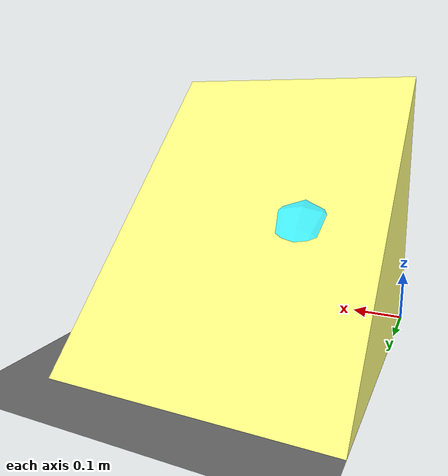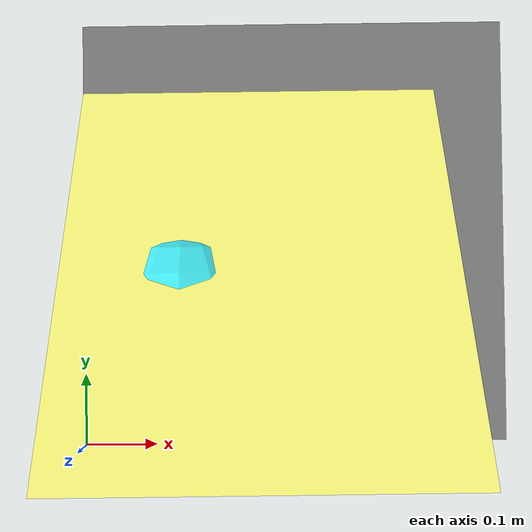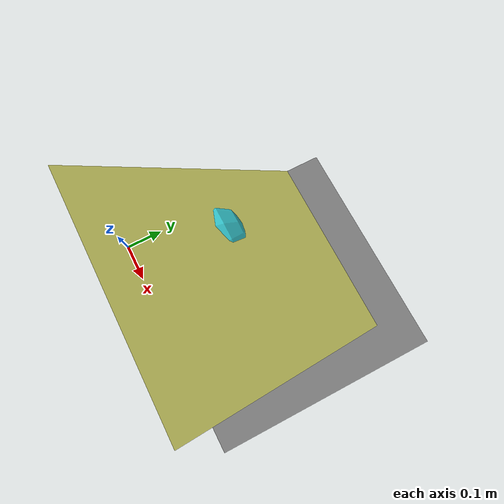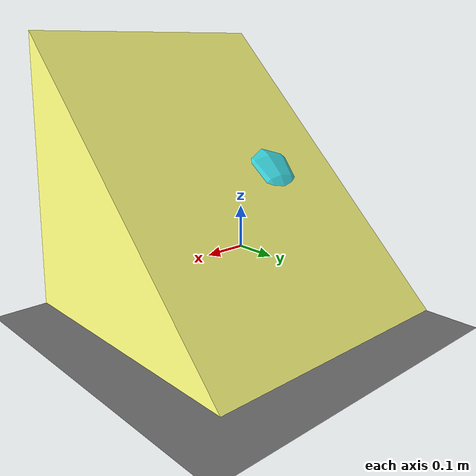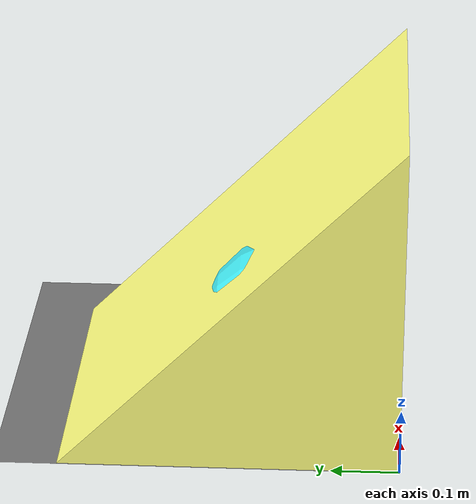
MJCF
<?xml version="1.0" encoding="utf-8"?>
<mujoco>
	<compiler angle="radian" coordinate="local" meshdir="/Users/tom/dev/imperial/FYP/MAax/assets/stls" texturedir="/Users/tom/dev/imperial/FYP/MAax/assets/textures"></compiler>
	<option timestep="0.005">
		<flag warmstart="enable"></flag>
	</option>
	<worldbody>
		<geom name="floor0" pos="3 3 0" size="3 3 1" type="plane" condim="3"></geom>
		<body name="floor0" pos="3 3 0"></body>
		<body pos="0.15 0.15 0.15" name="agent0_agent0">
			<joint axis="1 0 0" damping="0.1" name="agent0_slide0" pos="0 0 0" type="slide"></joint>
			<joint axis="0 1 0" damping="0.1" name="agent0_slide1" pos="0 0 0" type="slide"></joint>
			<joint axis="0 0 1" damping="0.1" name="agent0_slide2" pos="0 0 0" type="slide"></joint>
			<geom name="agent0_agent" mass="1" pos="0 0 0" rgba="0.258824 0.921569 0.956863 1" size="0.15" type="sphere" euler="1.57 0 0" friction="0.01"></geom>
		</body>
		<body pos="0.15 0.15 0.15" name="agent1_agent1">
			<joint axis="1 0 0" damping="0.1" name="agent1_slide0" pos="0 0 0" type="slide"></joint>
			<joint axis="0 1 0" damping="0.1" name="agent1_slide1" pos="0 0 0" type="slide"></joint>
			<joint axis="0 0 1" damping="0.1" name="agent1_slide2" pos="0 0 0" type="slide"></joint>
			<geom name="agent1_agent" mass="1" pos="0 0 0" rgba="0.258824 0.921569 0.956863 1" size="0.15" type="sphere" euler="1.57 0 0" friction="0.01"></geom>
		</body>
		<body pos="0.25 0.25 0.25" name="ramp0_ramp0">
			<geom name="ramp0_ramp" pos="0 0 0" type="mesh" mesh="ramp0_ramp" mass="1" rgba="1 1 0.5 1" material="material0" friction="0.01"></geom>
			<joint type="free" name="ramp0_free" damping="0.001"></joint>
		</body>
		<body pos="0.25 0.25 0.25" name="ramp1_ramp1">
			<geom name="ramp1_ramp" pos="0 0 0" type="mesh" mesh="ramp1_ramp" mass="1" rgba="1 1 0.5 1" material="material1" friction="0.01"></geom>
			<joint type="free" name="ramp1_free" damping="0.001"></joint>
		</body>
		<body pos="0.25 0.25 0.25" name="ramp2_ramp2">
			<geom name="ramp2_ramp" pos="0 0 0" type="mesh" mesh="ramp2_ramp" mass="1" rgba="1 1 0.5 1" material="material2" friction="0.01"></geom>
			<joint type="free" name="ramp2_free" damping="0.001"></joint>
		</body>
		<body pos="0.25 0.25 0.25" name="ramp3_ramp3">
			<geom name="ramp3_ramp" pos="0 0 0" type="mesh" mesh="ramp3_ramp" mass="1" rgba="1 1 0.5 1" material="material3" friction="0.01"></geom>
			<joint type="free" name="ramp3_free" damping="0.001"></joint>
		</body>
	</worldbody>
	<actuator>
		<motor gear="100" joint="agent0_slide0"></motor>
		<motor gear="100" joint="agent0_slide1"></motor>
		<motor gear="100" joint="agent1_slide0"></motor>
		<motor gear="100" joint="agent1_slide1"></motor>
	</actuator>
	<asset>
		<mesh file="ramp.stl" name="ramp0_ramp" scale="0.5 0.5 0.5"></mesh>
		<mesh file="ramp.stl" name="ramp1_ramp" scale="0.5 0.5 0.5"></mesh>
		<mesh file="ramp.stl" name="ramp2_ramp" scale="0.5 0.5 0.5"></mesh>
		<mesh file="ramp.stl" name="ramp3_ramp" scale="0.5 0.5 0.5"></mesh>
		<texture name="texture_material0" type="cube" builtin="none" file="chars/A.png" gridlayout=".U..LFRB.D.." gridsize="3 4"></texture>
		<texture name="texture_material1" type="cube" builtin="none" file="chars/B.png" gridlayout=".U..LFRB.D.." gridsize="3 4"></texture>
		<texture name="texture_material2" type="cube" builtin="none" file="chars/C.png" gridlayout=".U..LFRB.D.." gridsize="3 4"></texture>
		<texture name="texture_material3" type="cube" builtin="none" file="chars/D.png" gridlayout=".U..LFRB.D.." gridsize="3 4"></texture>
		<material name="material0" texture="texture_material0"></material>
		<material name="material1" texture="texture_material1"></material>
		<material name="material2" texture="texture_material2"></material>
		<material name="material3" texture="texture_material3"></material>
	</asset>
</mujoco>
